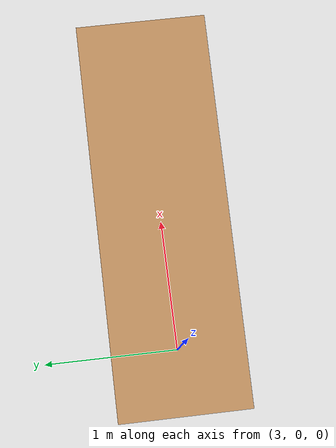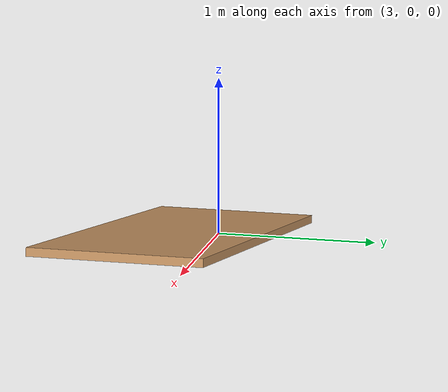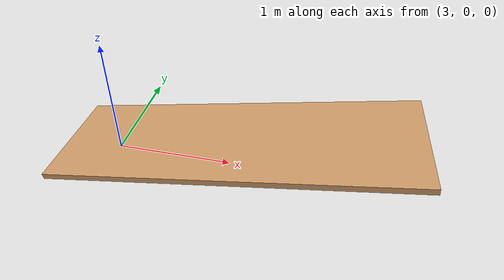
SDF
<?xml version="1.0" ?>
<sdf version="1.6">
  <model name="clean_reversed_ramp">
    <static>true</static>

    <!-- 简洁反向斜坡：只有斜坡本体，无任何标记 -->
    <link name="ramp">
      <!-- 中心：X=4.0米，高度0.26米，倾斜-10度（向下） -->
      <!-- 高端：X=2.5米，高度≈0.3米 -->
      <!-- 低端：X=5.5米，高度≈0.05米 -->
      <pose>4.0 0 0.26 0 -0.175 0</pose>

      <collision name="collision">
        <geometry>
          <box>
            <size>3.0 1.0 0.05</size>
          </box>
        </geometry>
        <surface>
          <friction>
            <ode>
              <mu>0.8</mu>
              <mu2>0.8</mu2>
              <slip1>0.0</slip1>
              <slip2>0.0</slip2>
            </ode>
          </friction>
        </surface>
      </collision>

      <visual name="visual">
        <geometry>
          <box>
            <size>3.0 1.0 0.05</size>
          </box>
        </geometry>
        <material>
          <ambient>0.6 0.4 0.2 1</ambient>  <!-- 棕色 -->
          <diffuse>0.8 0.6 0.4 1</diffuse>
          <specular>0.1 0.1 0.1 1</specular>
        </material>
      </visual>
    </link>
  </model>
</sdf>
